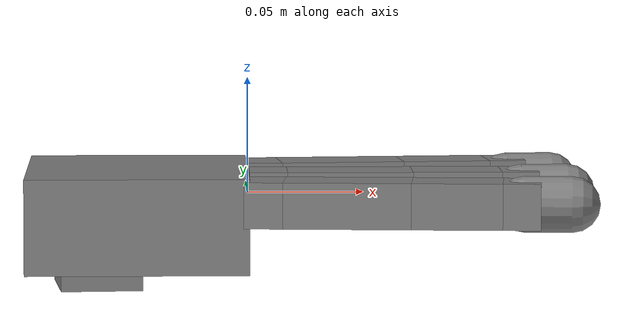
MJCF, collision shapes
<mujoco model="allegro_left">
  <compiler angle="radian" meshdir="assets" autolimits="true"/>

  <option cone="elliptic" impratio="10"/>
  <!-- The type of contact friction cone. Elliptic cones are a better model of the physical reality,
      but pyramidal cones sometimes make the solver faster and more robust. -->

  <!-- solref, solimp: Constraint solver parameters for contact simulation. -->

  <default>
    <default class="allegro_left">
      <joint axis="0 1 0" damping=".1"/>
      <position kp="1"/>
      <geom density="800"/>
      <!-- The internal default of 1000 is the density of water in SI units.  -->

      <default class="visual">
        <geom type="mesh" contype="0" conaffinity="0" group="2" material="black"/>
        <default class="palm_visual">
          <geom mesh="base_link"/>
        </default>
        <default class="base_visual">
          <geom mesh="link_0.0"/>
        </default>
        <default class="proximal_visual">
          <geom mesh="link_1.0"/>
        </default>
        <default class="medial_visual">
          <geom mesh="link_2.0"/>
        </default>
        <default class="distal_visual">
          <geom mesh="link_3.0"/>
        </default>
        <default class="fingertip_visual">
          <geom pos="0 0 0.0267" material="white" mesh="link_3.0_tip"/>
        </default>
        <default class="thumbtip_visual">
          <geom pos="0 0 0.0423" material="white" mesh="link_15.0_tip"/>
        </default>
      </default>

      <default class="collision">
        <geom group="3" type="box" mass="0"/>
        <default class="palm_collision">
          <geom size="0.0204 0.0565 0.0475" pos="-0.0093 0 -0.0475"/>
        </default>
        <default class="base_collision">
          <geom size="0.0098 0.01375 0.0082" pos="0 0 0.0082"/>
          <default class="thumb_base_collision">
            <geom size="0.0179 0.017 0.02275" pos="-0.0179 0.009 0.0145"/>
          </default>
        </default>
        <default class="proximal_collision">
          <geom size="0.0098 0.01375 0.027" pos="0 0 0.027"/>
          <default class="thumb_proximal_collision">
            <geom size="0.0098 0.01375 0.00885" pos="0 0 0.00885"/>
          </default>
        </default>
        <default class="medial_collision">
          <geom size="0.0098 0.01375 0.0192" pos="0 0 0.0192"/>
          <default class="thumb_medial_collision">
            <geom size="0.0098 0.01375 0.0257" pos="0 0 0.0257"/>
          </default>
        </default>
        <default class="distal_collision">
          <geom size="0.0098 0.01375 0.008" pos="0 0 0.008"/>
          <default class="thumb_distal_collision">
            <geom size="0.0098 0.01375 0.0157" pos="0 0 0.0157"/>
          </default>
        </default>
        <default class="fingertip_collision">
          <geom type="capsule" size="0.012 0.01" pos="0 0 0.019"/>
          <default class="thumbtip_collision">
            <geom type="capsule" size="0.012 0.008" pos="0 0 0.035"/>
          </default>
        </default>
      </default>

      <default class="base">
        <joint axis="0 0 1" range="-0.47 0.47"/>
        <position ctrlrange="-0.47 0.47"/>
      </default>
      <default class="proximal">
        <joint range="-0.196 1.61"/>
        <position ctrlrange="-0.196 1.61"/>
      </default>
      <default class="medial">
        <joint range="-0.174 1.709"/>
        <position ctrlrange="-0.174 1.709"/>
      </default>
      <default class="distal">
        <joint range="-0.227 1.618"/>
        <position ctrlrange="-0.227 1.618"/>
      </default>
      <default class="thumb_base">
        <joint axis="1 0 0" range="0.263 1.396"/>
        <position ctrlrange="0.263 1.396"/>
      </default>
      <default class="thumb_proximal">
        <joint axis="0 0 -1" range="-0.105 1.163"/>
        <position ctrlrange="-0.105 1.163"/>
      </default>
      <default class="thumb_medial">
        <joint range="-0.189 1.644"/>
        <position ctrlrange="-0.189 1.644"/>
      </default>
      <default class="thumb_distal">
        <joint range="-0.162 1.719"/>
        <position ctrlrange="-0.162 1.719"/>
      </default>
    </default>
  </default>

  <asset>
    <material name="black" rgba="0.2 0.2 0.2 1"/>
    <material name="white" rgba="0.9 0.9 0.9 1"/>

    <mesh file="base_link_left.stl"/>
    <mesh file="link_0.0.stl"/>
    <mesh file="link_1.0.stl"/>
    <mesh file="link_2.0.stl"/>
    <mesh file="link_3.0.stl"/>
    <mesh file="link_3.0_tip.stl"/>
    <mesh file="link_12.0_left.stl"/>
    <mesh file="link_13.0.stl"/>
    <mesh file="link_14.0.stl"/>
    <mesh file="link_15.0.stl"/>
    <mesh file="link_15.0_tip.stl"/>
  </asset>

  <worldbody>
    <body name="palm" quat="0 1 0 1" childclass="allegro_left">
      <!-- This childclass applies to all descendant elements, it contains joint axis, joint damping, pos kp and geom density -->
      <geom quat="1 -1 0 0" class="palm_visual" mesh="base_link_left"/>
      <geom class="palm_collision"/>
      <!-- ^ this class contains group="3" type="box" mass="0", geom size and pos -->

      <!-- Ring finger -->
      <body name="rf_base" pos="0 0.0435 -0.001542" quat="0.999048 -0.0436194 0 0">
        <joint name="rfj0" class="base"/>
        <!-- ^ this class contains joint axis, range, pos ctrlrange -->
        <geom class="base_visual"/>
        <!-- ^ this class contains type="mesh" contype="0" conaffinity="0" group="2" material="black", and mesh id -->
        <geom class="base_collision"/>
        <!-- ^ this class contains group="3" type="box" mass="0", geom size and pos -->
        <body name="rf_proximal" pos="0 0 0.0164">
          <joint name="rfj1" class="proximal"/>
          <geom class="proximal_visual"/>
          <geom class="proximal_collision"/>
          <body name="rf_medial" pos="0 0 0.054">
            <joint name="rfj2" class="medial"/>
            <geom class="medial_visual"/>
            <geom class="medial_collision"/>
            <body name="rf_distal" pos="0 0 0.0384">
              <joint name="rfj3" class="distal"/>
              <geom class="distal_visual"/>
              <geom class="distal_collision"/>
              <body name="rf_tip">
                <!-- Note that there is no joint here, is this the way to represent a 'fix' joint? -->
                <geom class="fingertip_visual"/>
                <geom class="fingertip_collision"/>
              </body>
            </body>
          </body>
        </body>
      </body>
      <!-- Middle finger -->
      <body name="mf_base" pos="0 0 0.0007">
        <joint name="mfj0" class="base"/>
        <geom class="base_visual"/>
        <geom class="base_collision"/>
        <body name="mf_proximal" pos="0 0 0.0164">
          <joint name="mfj1" class="proximal"/>
          <geom class="proximal_visual"/>
          <geom class="proximal_collision"/>
          <body name="mf_medial" pos="0 0 0.054">
            <joint name="mfj2" class="medial"/>
            <geom class="medial_visual"/>
            <geom class="medial_collision"/>
            <body name="mf_distal" pos="0 0 0.0384">
              <joint name="mfj3" class="distal"/>
              <geom class="distal_visual"/>
              <geom class="distal_collision"/>
              <body name="mf_tip">
                <!-- Again, no joint here -->
                <geom class="fingertip_visual"/>
                <geom class="fingertip_collision"/>
              </body>
            </body>
          </body>
        </body>
      </body>
      <!-- First finger -->
      <body name="ff_base" pos="0 -0.0435 -0.001542" quat="0.999048 0.0436194 0 0">
        <joint name="ffj0" class="base"/>
        <geom class="base_visual"/>
        <geom class="base_collision"/>
        <body name="ff_proximal" pos="0 0 0.0164">
          <joint name="ffj1" class="proximal"/>
          <geom class="proximal_visual"/>
          <geom class="proximal_collision"/>
          <body name="ff_medial" pos="0 0 0.054">
            <joint name="ffj2" class="medial"/>
            <geom class="medial_visual"/>
            <geom class="medial_collision"/>
            <body name="ff_distal" pos="0 0 0.0384">
              <joint name="ffj3" class="distal"/>
              <geom class="distal_visual"/>
              <geom class="distal_collision"/>
              <body name="ff_tip">
                <!-- Again, no joint here -->
                <geom class="fingertip_visual"/>
                <geom class="fingertip_collision"/>
              </body>
            </body>
          </body>
        </body>
      </body>
      <!-- Thumb -->
      <body name="th_base" pos="-0.0182 -0.019333 -0.045987" quat="0.477714 0.521334 -0.521334 0.477714">
        <joint name="thj0" class="thumb_base"/>
        <geom quat="0 1 0 0" class="visual" mesh="link_12.0_left"/>
        <geom class="thumb_base_collision"/>
        <body name="th_proximal" pos="-0.027 -0.005 0.0399">
          <joint name="thj1" class="thumb_proximal"/>
          <geom class="visual" mesh="link_13.0"/>
          <geom class="thumb_proximal_collision"/>
          <body name="th_medial" pos="0 0 0.0177">
            <joint name="thj2" class="thumb_medial"/>
            <geom class="visual" mesh="link_14.0"/>
            <geom class="thumb_medial_collision"/>
            <body name="th_distal" pos="0 0 0.0514">
              <joint name="thj3" class="thumb_distal"/>
              <geom class="visual" mesh="link_15.0"/>
              <geom class="thumb_distal_collision"/>
              <body name="th_tip">
                <!-- Again, no joint here -->
                <geom class="thumbtip_visual"/>
                <geom class="thumbtip_collision"/>
              </body>
            </body>
          </body>
        </body>
      </body>
    </body>
  </worldbody>

  <contact>
    <exclude body1="palm" body2="ff_base"/>
    <exclude body1="palm" body2="mf_base"/>
    <exclude body1="palm" body2="rf_base"/>
    <exclude body1="palm" body2="th_base"/>
    <exclude body1="palm" body2="th_proximal"/>
  </contact>

  <actuator>
    <position name="ffa0" joint="ffj0" class="base"/>
    <position name="ffa1" joint="ffj1" class="proximal"/>
    <position name="ffa2" joint="ffj2" class="medial"/>
    <position name="ffa3" joint="ffj3" class="distal"/>
    <position name="mfa0" joint="mfj0" class="base"/>
    <position name="mfa1" joint="mfj1" class="proximal"/>
    <position name="mfa2" joint="mfj2" class="medial"/>
    <position name="mfa3" joint="mfj3" class="distal"/>
    <position name="rfa0" joint="rfj0" class="base"/>
    <position name="rfa1" joint="rfj1" class="proximal"/>
    <position name="rfa2" joint="rfj2" class="medial"/>
    <position name="rfa3" joint="rfj3" class="distal"/>
    <position name="tha0" joint="thj0" class="thumb_base"/>
    <position name="tha1" joint="thj1" class="thumb_proximal"/>
    <position name="tha2" joint="thj2" class="thumb_medial"/>
    <position name="tha3" joint="thj3" class="thumb_distal"/>
  </actuator>
</mujoco>
